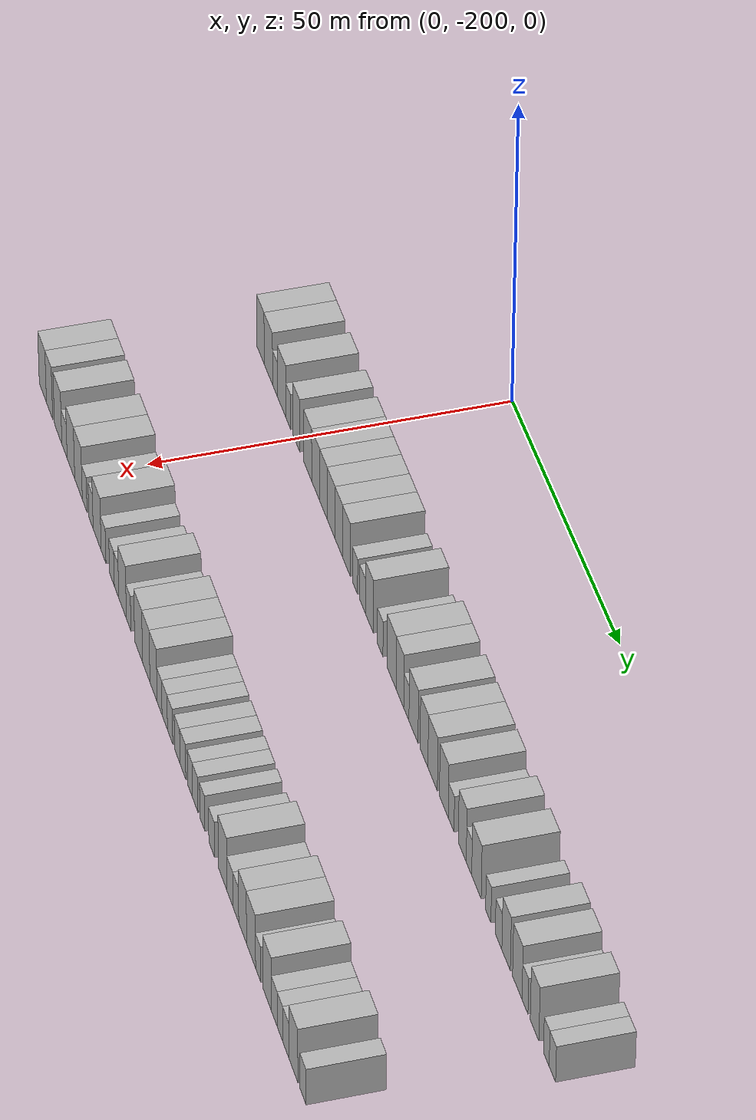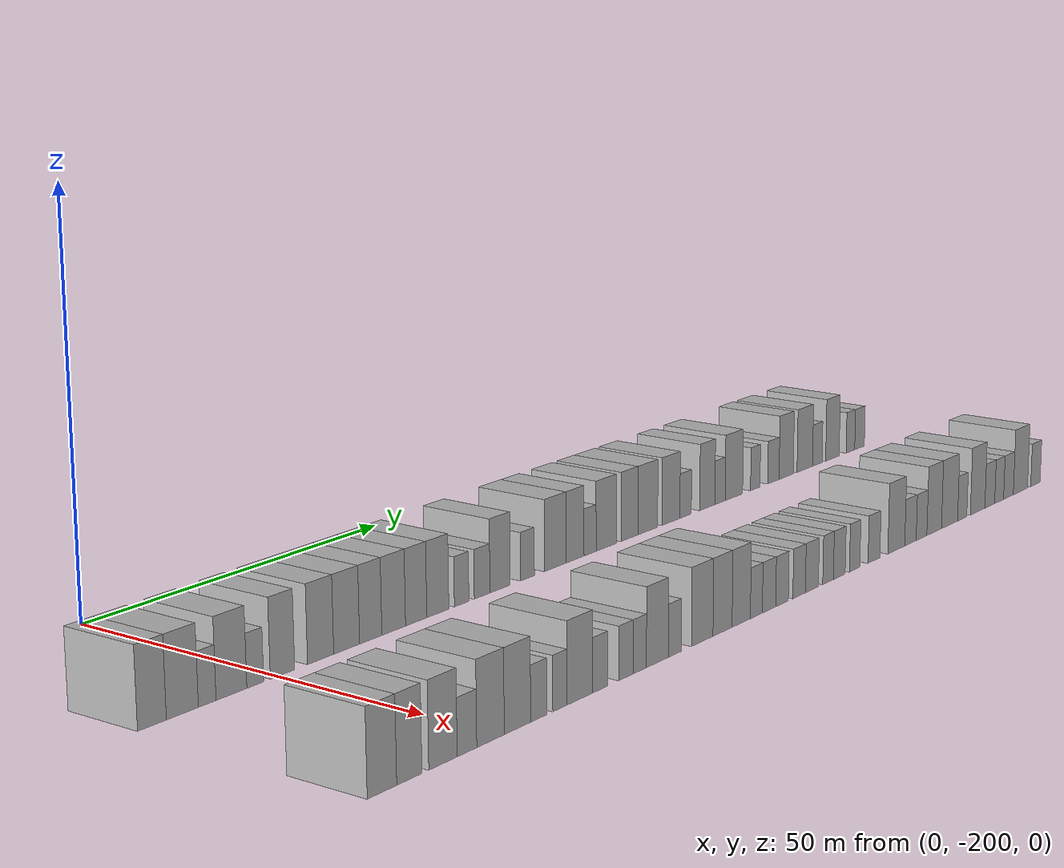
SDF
<sdf version="1.6">
 <world name="default">
  <model name="building_1">
   <static>1</static>
   <pose>25.0000 -218.0419 0 0.000000 0.000000 0.000000</pose>
   <link name="link">
    <pose>0 0 4.50 0 0 0</pose>
    <collision name="collision"><geometry><box><size>10.0000 3.9162 9.0000</size></box></geometry></collision>
    <visual name="visual">
     <cast_shadows>0</cast_shadows>
     <geometry><box><size>10.0000 3.9162 9.0000</size></box></geometry>
     <material>
      <script>
       <uri>model://HANNAS_wall/materials/scripts</uri>
       <uri>model://HANNAS_wall/materials/textures</uri>
       <name>vrc/HANNAS_wall</name>
      </script>
     </material>
    </visual>
   </link>
  </model>
  <model name="building_2">
   <static>1</static>
   <pose>25.0000 -213.8533 0 0.000000 0.000000 0.000000</pose>
   <link name="link">
    <pose>0 0 4.50 0 0 0</pose>
    <collision name="collision"><geometry><box><size>10.0000 4.4610 9.0000</size></box></geometry></collision>
    <visual name="visual">
     <cast_shadows>0</cast_shadows>
     <geometry><box><size>10.0000 4.4610 9.0000</size></box></geometry>
     <material>
      <script>
       <uri>model://HANNAS_wall/materials/scripts</uri>
       <uri>model://HANNAS_wall/materials/textures</uri>
       <name>vrc/HANNAS_wall</name>
      </script>
     </material>
    </visual>
   </link>
  </model>
  <model name="building_3">
   <static>1</static>
   <pose>25.0000 -210.3677 0 0.000000 0.000000 0.000000</pose>
   <link name="link">
    <pose>0 0 3.00 0 0 0</pose>
    <collision name="collision"><geometry><box><size>10.0000 2.5101 6.0000</size></box></geometry></collision>
    <visual name="visual">
     <cast_shadows>0</cast_shadows>
     <geometry><box><size>10.0000 2.5101 6.0000</size></box></geometry>
     <material>
      <script>
       <uri>model://HANNAS_wall/materials/scripts</uri>
       <uri>model://HANNAS_wall/materials/textures</uri>
       <name>vrc/HANNAS_wall</name>
      </script>
     </material>
    </visual>
   </link>
  </model>
  <model name="building_4">
   <static>1</static>
   <pose>25.0000 -206.8642 0 0.000000 0.000000 0.000000</pose>
   <link name="link">
    <pose>0 0 4.50 0 0 0</pose>
    <collision name="collision"><geometry><box><size>10.0000 4.4970 9.0000</size></box></geometry></collision>
    <visual name="visual">
     <cast_shadows>0</cast_shadows>
     <geometry><box><size>10.0000 4.4970 9.0000</size></box></geometry>
     <material>
      <script>
       <uri>model://HANNAS_wall/materials/scripts</uri>
       <uri>model://HANNAS_wall/materials/textures</uri>
       <name>vrc/HANNAS_wall</name>
      </script>
     </material>
    </visual>
   </link>
  </model>
  <model name="building_5">
   <static>1</static>
   <pose>25.0000 -203.3650 0 0.000000 0.000000 0.000000</pose>
   <link name="link">
    <pose>0 0 3.00 0 0 0</pose>
    <collision name="collision"><geometry><box><size>10.0000 2.5015 6.0000</size></box></geometry></collision>
    <visual name="visual">
     <cast_shadows>0</cast_shadows>
     <geometry><box><size>10.0000 2.5015 6.0000</size></box></geometry>
     <material>
      <script>
       <uri>model://HANNAS_wall/materials/scripts</uri>
       <uri>model://HANNAS_wall/materials/textures</uri>
       <name>vrc/HANNAS_wall</name>
      </script>
     </material>
    </visual>
   </link>
  </model>
  <model name="building_6">
   <static>1</static>
   <pose>25.0000 -199.2475 0 0.000000 0.000000 0.000000</pose>
   <link name="link">
    <pose>0 0 4.50 0 0 0</pose>
    <collision name="collision"><geometry><box><size>10.0000 3.7333 9.0000</size></box></geometry></collision>
    <visual name="visual">
     <cast_shadows>0</cast_shadows>
     <geometry><box><size>10.0000 3.7333 9.0000</size></box></geometry>
     <material>
      <script>
       <uri>model://HANNAS_wall/materials/scripts</uri>
       <uri>model://HANNAS_wall/materials/textures</uri>
       <name>vrc/HANNAS_wall</name>
      </script>
     </material>
    </visual>
   </link>
  </model>
  <model name="building_7">
   <static>1</static>
   <pose>25.0000 -193.3055 0 0.000000 0.000000 0.000000</pose>
   <link name="link">
    <pose>0 0 4.50 0 0 0</pose>
    <collision name="collision"><geometry><box><size>10.0000 4.1508 9.0000</size></box></geometry></collision>
    <visual name="visual">
     <cast_shadows>0</cast_shadows>
     <geometry><box><size>10.0000 4.1508 9.0000</size></box></geometry>
     <material>
      <script>
       <uri>model://HANNAS_wall/materials/scripts</uri>
       <uri>model://HANNAS_wall/materials/textures</uri>
       <name>vrc/HANNAS_wall</name>
      </script>
     </material>
    </visual>
   </link>
  </model>
  <model name="building_8">
   <static>1</static>
   <pose>25.0000 -189.1234 0 0.000000 0.000000 0.000000</pose>
   <link name="link">
    <pose>0 0 4.50 0 0 0</pose>
    <collision name="collision"><geometry><box><size>10.0000 4.2133 9.0000</size></box></geometry></collision>
    <visual name="visual">
     <cast_shadows>0</cast_shadows>
     <geometry><box><size>10.0000 4.2133 9.0000</size></box></geometry>
     <material>
      <script>
       <uri>model://HANNAS_wall/materials/scripts</uri>
       <uri>model://HANNAS_wall/materials/textures</uri>
       <name>vrc/HANNAS_wall</name>
      </script>
     </material>
    </visual>
   </link>
  </model>
  <model name="building_9">
   <static>1</static>
   <pose>25.0000 -185.1619 0 0.000000 0.000000 0.000000</pose>
   <link name="link">
    <pose>0 0 4.50 0 0 0</pose>
    <collision name="collision"><geometry><box><size>10.0000 3.7097 9.0000</size></box></geometry></collision>
    <visual name="visual">
     <cast_shadows>0</cast_shadows>
     <geometry><box><size>10.0000 3.7097 9.0000</size></box></geometry>
     <material>
      <script>
       <uri>model://HANNAS_wall/materials/scripts</uri>
       <uri>model://HANNAS_wall/materials/textures</uri>
       <name>vrc/HANNAS_wall</name>
      </script>
     </material>
    </visual>
   </link>
  </model>
  <model name="building_10">
   <static>1</static>
   <pose>25.0000 -181.2895 0 0.000000 0.000000 0.000000</pose>
   <link name="link">
    <pose>0 0 4.50 0 0 0</pose>
    <collision name="collision"><geometry><box><size>10.0000 4.0353 9.0000</size></box></geometry></collision>
    <visual name="visual">
     <cast_shadows>0</cast_shadows>
     <geometry><box><size>10.0000 4.0353 9.0000</size></box></geometry>
     <material>
      <script>
       <uri>model://HANNAS_wall/materials/scripts</uri>
       <uri>model://HANNAS_wall/materials/textures</uri>
       <name>vrc/HANNAS_wall</name>
      </script>
     </material>
    </visual>
   </link>
  </model>
  <model name="building_11">
   <static>1</static>
   <pose>25.0000 -177.4134 0 0.000000 0.000000 0.000000</pose>
   <link name="link">
    <pose>0 0 4.50 0 0 0</pose>
    <collision name="collision"><geometry><box><size>10.0000 3.7169 9.0000</size></box></geometry></collision>
    <visual name="visual">
     <cast_shadows>0</cast_shadows>
     <geometry><box><size>10.0000 3.7169 9.0000</size></box></geometry>
     <material>
      <script>
       <uri>model://HANNAS_wall/materials/scripts</uri>
       <uri>model://HANNAS_wall/materials/textures</uri>
       <name>vrc/HANNAS_wall</name>
      </script>
     </material>
    </visual>
   </link>
  </model>
  <model name="building_12">
   <static>1</static>
   <pose>25.0000 -173.5916 0 0.000000 0.000000 0.000000</pose>
   <link name="link">
    <pose>0 0 4.50 0 0 0</pose>
    <collision name="collision"><geometry><box><size>10.0000 3.9268 9.0000</size></box></geometry></collision>
    <visual name="visual">
     <cast_shadows>0</cast_shadows>
     <geometry><box><size>10.0000 3.9268 9.0000</size></box></geometry>
     <material>
      <script>
       <uri>model://HANNAS_wall/materials/scripts</uri>
       <uri>model://HANNAS_wall/materials/textures</uri>
       <name>vrc/HANNAS_wall</name>
      </script>
     </material>
    </visual>
   </link>
  </model>
  <model name="building_13">
   <static>1</static>
   <pose>25.0000 -169.3011 0 0.000000 0.000000 0.000000</pose>
   <link name="link">
    <pose>0 0 3.00 0 0 0</pose>
    <collision name="collision"><geometry><box><size>10.0000 2.6542 6.0000</size></box></geometry></collision>
    <visual name="visual">
     <cast_shadows>0</cast_shadows>
     <geometry><box><size>10.0000 2.6542 6.0000</size></box></geometry>
     <material>
      <script>
       <uri>model://HANNAS_wall/materials/scripts</uri>
       <uri>model://HANNAS_wall/materials/textures</uri>
       <name>vrc/HANNAS_wall</name>
      </script>
     </material>
    </visual>
   </link>
  </model>
  <model name="building_14">
   <static>1</static>
   <pose>25.0000 -165.5096 0 0.000000 0.000000 0.000000</pose>
   <link name="link">
    <pose>0 0 3.00 0 0 0</pose>
    <collision name="collision"><geometry><box><size>10.0000 2.9288 6.0000</size></box></geometry></collision>
    <visual name="visual">
     <cast_shadows>0</cast_shadows>
     <geometry><box><size>10.0000 2.9288 6.0000</size></box></geometry>
     <material>
      <script>
       <uri>model://HANNAS_wall/materials/scripts</uri>
       <uri>model://HANNAS_wall/materials/textures</uri>
       <name>vrc/HANNAS_wall</name>
      </script>
     </material>
    </visual>
   </link>
  </model>
  <model name="building_15">
   <static>1</static>
   <pose>25.0000 -162.1145 0 0.000000 0.000000 0.000000</pose>
   <link name="link">
    <pose>0 0 4.50 0 0 0</pose>
    <collision name="collision"><geometry><box><size>10.0000 3.8613 9.0000</size></box></geometry></collision>
    <visual name="visual">
     <cast_shadows>0</cast_shadows>
     <geometry><box><size>10.0000 3.8613 9.0000</size></box></geometry>
     <material>
      <script>
       <uri>model://HANNAS_wall/materials/scripts</uri>
       <uri>model://HANNAS_wall/materials/textures</uri>
       <name>vrc/HANNAS_wall</name>
      </script>
     </material>
    </visual>
   </link>
  </model>
  <model name="building_16">
   <static>1</static>
   <pose>25.0000 -156.8311 0 0.000000 0.000000 0.000000</pose>
   <link name="link">
    <pose>0 0 3.00 0 0 0</pose>
    <collision name="collision"><geometry><box><size>10.0000 2.7055 6.0000</size></box></geometry></collision>
    <visual name="visual">
     <cast_shadows>0</cast_shadows>
     <geometry><box><size>10.0000 2.7055 6.0000</size></box></geometry>
     <material>
      <script>
       <uri>model://HANNAS_wall/materials/scripts</uri>
       <uri>model://HANNAS_wall/materials/textures</uri>
       <name>vrc/HANNAS_wall</name>
      </script>
     </material>
    </visual>
   </link>
  </model>
  <model name="building_17">
   <static>1</static>
   <pose>25.0000 -151.2708 0 0.000000 0.000000 0.000000</pose>
   <link name="link">
    <pose>0 0 4.50 0 0 0</pose>
    <collision name="collision"><geometry><box><size>10.0000 4.4152 9.0000</size></box></geometry></collision>
    <visual name="visual">
     <cast_shadows>0</cast_shadows>
     <geometry><box><size>10.0000 4.4152 9.0000</size></box></geometry>
     <material>
      <script>
       <uri>model://HANNAS_wall/materials/scripts</uri>
       <uri>model://HANNAS_wall/materials/textures</uri>
       <name>vrc/HANNAS_wall</name>
      </script>
     </material>
    </visual>
   </link>
  </model>
  <model name="building_18">
   <static>1</static>
   <pose>25.0000 -147.2323 0 0.000000 0.000000 0.000000</pose>
   <link name="link">
    <pose>0 0 4.50 0 0 0</pose>
    <collision name="collision"><geometry><box><size>10.0000 3.6618 9.0000</size></box></geometry></collision>
    <visual name="visual">
     <cast_shadows>0</cast_shadows>
     <geometry><box><size>10.0000 3.6618 9.0000</size></box></geometry>
     <material>
      <script>
       <uri>model://HANNAS_wall/materials/scripts</uri>
       <uri>model://HANNAS_wall/materials/textures</uri>
       <name>vrc/HANNAS_wall</name>
      </script>
     </material>
    </visual>
   </link>
  </model>
  <model name="building_19">
   <static>1</static>
   <pose>25.0000 -144.1342 0 0.000000 0.000000 0.000000</pose>
   <link name="link">
    <pose>0 0 3.00 0 0 0</pose>
    <collision name="collision"><geometry><box><size>10.0000 2.5345 6.0000</size></box></geometry></collision>
    <visual name="visual">
     <cast_shadows>0</cast_shadows>
     <geometry><box><size>10.0000 2.5345 6.0000</size></box></geometry>
     <material>
      <script>
       <uri>model://HANNAS_wall/materials/scripts</uri>
       <uri>model://HANNAS_wall/materials/textures</uri>
       <name>vrc/HANNAS_wall</name>
      </script>
     </material>
    </visual>
   </link>
  </model>
  <model name="building_20">
   <static>1</static>
   <pose>25.0000 -140.6970 0 0.000000 0.000000 0.000000</pose>
   <link name="link">
    <pose>0 0 4.50 0 0 0</pose>
    <collision name="collision"><geometry><box><size>10.0000 4.3400 9.0000</size></box></geometry></collision>
    <visual name="visual">
     <cast_shadows>0</cast_shadows>
     <geometry><box><size>10.0000 4.3400 9.0000</size></box></geometry>
     <material>
      <script>
       <uri>model://HANNAS_wall/materials/scripts</uri>
       <uri>model://HANNAS_wall/materials/textures</uri>
       <name>vrc/HANNAS_wall</name>
      </script>
     </material>
    </visual>
   </link>
  </model>
  <model name="building_21">
   <static>1</static>
   <pose>25.0000 -135.6771 0 0.000000 0.000000 0.000000</pose>
   <link name="link">
    <pose>0 0 4.50 0 0 0</pose>
    <collision name="collision"><geometry><box><size>10.0000 3.6997 9.0000</size></box></geometry></collision>
    <visual name="visual">
     <cast_shadows>0</cast_shadows>
     <geometry><box><size>10.0000 3.6997 9.0000</size></box></geometry>
     <material>
      <script>
       <uri>model://HANNAS_wall/materials/scripts</uri>
       <uri>model://HANNAS_wall/materials/textures</uri>
       <name>vrc/HANNAS_wall</name>
      </script>
     </material>
    </visual>
   </link>
  </model>
  <model name="building_22">
   <static>1</static>
   <pose>25.0000 -131.6127 0 0.000000 0.000000 0.000000</pose>
   <link name="link">
    <pose>0 0 4.50 0 0 0</pose>
    <collision name="collision"><geometry><box><size>10.0000 4.4293 9.0000</size></box></geometry></collision>
    <visual name="visual">
     <cast_shadows>0</cast_shadows>
     <geometry><box><size>10.0000 4.4293 9.0000</size></box></geometry>
     <material>
      <script>
       <uri>model://HANNAS_wall/materials/scripts</uri>
       <uri>model://HANNAS_wall/materials/textures</uri>
       <name>vrc/HANNAS_wall</name>
      </script>
     </material>
    </visual>
   </link>
  </model>
  <model name="building_23">
   <static>1</static>
   <pose>25.0000 -126.3371 0 0.000000 0.000000 0.000000</pose>
   <link name="link">
    <pose>0 0 4.50 0 0 0</pose>
    <collision name="collision"><geometry><box><size>10.0000 4.1219 9.0000</size></box></geometry></collision>
    <visual name="visual">
     <cast_shadows>0</cast_shadows>
     <geometry><box><size>10.0000 4.1219 9.0000</size></box></geometry>
     <material>
      <script>
       <uri>model://HANNAS_wall/materials/scripts</uri>
       <uri>model://HANNAS_wall/materials/textures</uri>
       <name>vrc/HANNAS_wall</name>
      </script>
     </material>
    </visual>
   </link>
  </model>
  <model name="building_24">
   <static>1</static>
   <pose>25.0000 -122.9397 0 0.000000 0.000000 0.000000</pose>
   <link name="link">
    <pose>0 0 3.00 0 0 0</pose>
    <collision name="collision"><geometry><box><size>10.0000 2.6730 6.0000</size></box></geometry></collision>
    <visual name="visual">
     <cast_shadows>0</cast_shadows>
     <geometry><box><size>10.0000 2.6730 6.0000</size></box></geometry>
     <material>
      <script>
       <uri>model://HANNAS_wall/materials/scripts</uri>
       <uri>model://HANNAS_wall/materials/textures</uri>
       <name>vrc/HANNAS_wall</name>
      </script>
     </material>
    </visual>
   </link>
  </model>
  <model name="building_25">
   <static>1</static>
   <pose>25.0000 -117.7783 0 0.000000 0.000000 0.000000</pose>
   <link name="link">
    <pose>0 0 4.50 0 0 0</pose>
    <collision name="collision"><geometry><box><size>10.0000 3.6497 9.0000</size></box></geometry></collision>
    <visual name="visual">
     <cast_shadows>0</cast_shadows>
     <geometry><box><size>10.0000 3.6497 9.0000</size></box></geometry>
     <material>
      <script>
       <uri>model://HANNAS_wall/materials/scripts</uri>
       <uri>model://HANNAS_wall/materials/textures</uri>
       <name>vrc/HANNAS_wall</name>
      </script>
     </material>
    </visual>
   </link>
  </model>
  <model name="building_26">
   <static>1</static>
   <pose>25.0000 -114.7021 0 0.000000 0.000000 0.000000</pose>
   <link name="link">
    <pose>0 0 3.00 0 0 0</pose>
    <collision name="collision"><geometry><box><size>10.0000 2.5026 6.0000</size></box></geometry></collision>
    <visual name="visual">
     <cast_shadows>0</cast_shadows>
     <geometry><box><size>10.0000 2.5026 6.0000</size></box></geometry>
     <material>
      <script>
       <uri>model://HANNAS_wall/materials/scripts</uri>
       <uri>model://HANNAS_wall/materials/textures</uri>
       <name>vrc/HANNAS_wall</name>
      </script>
     </material>
    </visual>
   </link>
  </model>
  <model name="building_27">
   <static>1</static>
   <pose>25.0000 -111.2873 0 0.000000 0.000000 0.000000</pose>
   <link name="link">
    <pose>0 0 4.50 0 0 0</pose>
    <collision name="collision"><geometry><box><size>10.0000 4.3269 9.0000</size></box></geometry></collision>
    <visual name="visual">
     <cast_shadows>0</cast_shadows>
     <geometry><box><size>10.0000 4.3269 9.0000</size></box></geometry>
     <material>
      <script>
       <uri>model://HANNAS_wall/materials/scripts</uri>
       <uri>model://HANNAS_wall/materials/textures</uri>
       <name>vrc/HANNAS_wall</name>
      </script>
     </material>
    </visual>
   </link>
  </model>
  <model name="building_28">
   <static>1</static>
   <pose>25.0000 -105.9201 0 0.000000 0.000000 0.000000</pose>
   <link name="link">
    <pose>0 0 3.00 0 0 0</pose>
    <collision name="collision"><geometry><box><size>10.0000 2.4074 6.0000</size></box></geometry></collision>
    <visual name="visual">
     <cast_shadows>0</cast_shadows>
     <geometry><box><size>10.0000 2.4074 6.0000</size></box></geometry>
     <material>
      <script>
       <uri>model://HANNAS_wall/materials/scripts</uri>
       <uri>model://HANNAS_wall/materials/textures</uri>
       <name>vrc/HANNAS_wall</name>
      </script>
     </material>
    </visual>
   </link>
  </model>
  <model name="building_29">
   <static>1</static>
   <pose>25.0000 -101.2425 0 0.000000 0.000000 0.000000</pose>
   <link name="link">
    <pose>0 0 3.00 0 0 0</pose>
    <collision name="collision"><geometry><box><size>10.0000 2.9478 6.0000</size></box></geometry></collision>
    <visual name="visual">
     <cast_shadows>0</cast_shadows>
     <geometry><box><size>10.0000 2.9478 6.0000</size></box></geometry>
     <material>
      <script>
       <uri>model://HANNAS_wall/materials/scripts</uri>
       <uri>model://HANNAS_wall/materials/textures</uri>
       <name>vrc/HANNAS_wall</name>
      </script>
     </material>
    </visual>
   </link>
  </model>
  <model name="building_30">
   <static>1</static>
   <pose>25.0000 -97.8844 0 0.000000 0.000000 0.000000</pose>
   <link name="link">
    <pose>0 0 4.50 0 0 0</pose>
    <collision name="collision"><geometry><box><size>10.0000 3.7685 9.0000</size></box></geometry></collision>
    <visual name="visual">
     <cast_shadows>0</cast_shadows>
     <geometry><box><size>10.0000 3.7685 9.0000</size></box></geometry>
     <material>
      <script>
       <uri>model://HANNAS_wall/materials/scripts</uri>
       <uri>model://HANNAS_wall/materials/textures</uri>
       <name>vrc/HANNAS_wall</name>
      </script>
     </material>
    </visual>
   </link>
  </model>
  <model name="building_31">
   <static>1</static>
   <pose>25.0000 -92.9036 0 0.000000 0.000000 0.000000</pose>
   <link name="link">
    <pose>0 0 4.50 0 0 0</pose>
    <collision name="collision"><geometry><box><size>10.0000 4.1931 9.0000</size></box></geometry></collision>
    <visual name="visual">
     <cast_shadows>0</cast_shadows>
     <geometry><box><size>10.0000 4.1931 9.0000</size></box></geometry>
     <material>
      <script>
       <uri>model://HANNAS_wall/materials/scripts</uri>
       <uri>model://HANNAS_wall/materials/textures</uri>
       <name>vrc/HANNAS_wall</name>
      </script>
     </material>
    </visual>
   </link>
  </model>
  <model name="building_32">
   <static>1</static>
   <pose>25.0000 -89.4860 0 0.000000 0.000000 0.000000</pose>
   <link name="link">
    <pose>0 0 3.00 0 0 0</pose>
    <collision name="collision"><geometry><box><size>10.0000 2.6422 6.0000</size></box></geometry></collision>
    <visual name="visual">
     <cast_shadows>0</cast_shadows>
     <geometry><box><size>10.0000 2.6422 6.0000</size></box></geometry>
     <material>
      <script>
       <uri>model://HANNAS_wall/materials/scripts</uri>
       <uri>model://HANNAS_wall/materials/textures</uri>
       <name>vrc/HANNAS_wall</name>
      </script>
     </material>
    </visual>
   </link>
  </model>
  <model name="building_33">
   <static>1</static>
   <pose>25.0000 -85.2763 0 0.000000 0.000000 0.000000</pose>
   <link name="link">
    <pose>0 0 4.50 0 0 0</pose>
    <collision name="collision"><geometry><box><size>10.0000 3.7771 9.0000</size></box></geometry></collision>
    <visual name="visual">
     <cast_shadows>0</cast_shadows>
     <geometry><box><size>10.0000 3.7771 9.0000</size></box></geometry>
     <material>
      <script>
       <uri>model://HANNAS_wall/materials/scripts</uri>
       <uri>model://HANNAS_wall/materials/textures</uri>
       <name>vrc/HANNAS_wall</name>
      </script>
     </material>
    </visual>
   </link>
  </model>
  <model name="building_34">
   <static>1</static>
   <pose>25.0000 -80.1502 0 0.000000 0.000000 0.000000</pose>
   <link name="link">
    <pose>0 0 3.00 0 0 0</pose>
    <collision name="collision"><geometry><box><size>10.0000 2.4752 6.0000</size></box></geometry></collision>
    <visual name="visual">
     <cast_shadows>0</cast_shadows>
     <geometry><box><size>10.0000 2.4752 6.0000</size></box></geometry>
     <material>
      <script>
       <uri>model://HANNAS_wall/materials/scripts</uri>
       <uri>model://HANNAS_wall/materials/textures</uri>
       <name>vrc/HANNAS_wall</name>
      </script>
     </material>
    </visual>
   </link>
  </model>
  <model name="building_35">
   <static>1</static>
   <pose>25.0000 -77.5133 0 0.000000 0.000000 0.000000</pose>
   <link name="link">
    <pose>0 0 3.00 0 0 0</pose>
    <collision name="collision"><geometry><box><size>10.0000 2.7986 6.0000</size></box></geometry></collision>
    <visual name="visual">
     <cast_shadows>0</cast_shadows>
     <geometry><box><size>10.0000 2.7986 6.0000</size></box></geometry>
     <material>
      <script>
       <uri>model://HANNAS_wall/materials/scripts</uri>
       <uri>model://HANNAS_wall/materials/textures</uri>
       <name>vrc/HANNAS_wall</name>
      </script>
     </material>
    </visual>
   </link>
  </model>
  <model name="building_108">
   <static>1</static>
   <pose>55.0000 -217.9267 0 0.000000 0.000000 0.000000</pose>
   <link name="link">
    <pose>0 0 4.50 0 0 0</pose>
    <collision name="collision"><geometry><box><size>10.0000 4.1465 9.0000</size></box></geometry></collision>
    <visual name="visual">
     <cast_shadows>0</cast_shadows>
     <geometry><box><size>10.0000 4.1465 9.0000</size></box></geometry>
     <material>
      <script>
       <uri>model://HANNAS_wall/materials/scripts</uri>
       <uri>model://HANNAS_wall/materials/textures</uri>
       <name>vrc/HANNAS_wall</name>
      </script>
     </material>
    </visual>
   </link>
  </model>
  <model name="building_109">
   <static>1</static>
   <pose>55.0000 -214.0347 0 0.000000 0.000000 0.000000</pose>
   <link name="link">
    <pose>0 0 4.50 0 0 0</pose>
    <collision name="collision"><geometry><box><size>10.0000 3.6376 9.0000</size></box></geometry></collision>
    <visual name="visual">
     <cast_shadows>0</cast_shadows>
     <geometry><box><size>10.0000 3.6376 9.0000</size></box></geometry>
     <material>
      <script>
       <uri>model://HANNAS_wall/materials/scripts</uri>
       <uri>model://HANNAS_wall/materials/textures</uri>
       <name>vrc/HANNAS_wall</name>
      </script>
     </material>
    </visual>
   </link>
  </model>
  <model name="building_110">
   <static>1</static>
   <pose>55.0000 -209.0882 0 0.000000 0.000000 0.000000</pose>
   <link name="link">
    <pose>0 0 4.50 0 0 0</pose>
    <collision name="collision"><geometry><box><size>10.0000 4.2554 9.0000</size></box></geometry></collision>
    <visual name="visual">
     <cast_shadows>0</cast_shadows>
     <geometry><box><size>10.0000 4.2554 9.0000</size></box></geometry>
     <material>
      <script>
       <uri>model://HANNAS_wall/materials/scripts</uri>
       <uri>model://HANNAS_wall/materials/textures</uri>
       <name>vrc/HANNAS_wall</name>
      </script>
     </material>
    </visual>
   </link>
  </model>
  <model name="building_111">
   <static>1</static>
   <pose>55.0000 -205.4622 0 0.000000 0.000000 0.000000</pose>
   <link name="link">
    <pose>0 0 3.00 0 0 0</pose>
    <collision name="collision"><geometry><box><size>10.0000 2.9965 6.0000</size></box></geometry></collision>
    <visual name="visual">
     <cast_shadows>0</cast_shadows>
     <geometry><box><size>10.0000 2.9965 6.0000</size></box></geometry>
     <material>
      <script>
       <uri>model://HANNAS_wall/materials/scripts</uri>
       <uri>model://HANNAS_wall/materials/textures</uri>
       <name>vrc/HANNAS_wall</name>
      </script>
     </material>
    </visual>
   </link>
  </model>
  <model name="building_112">
   <static>1</static>
   <pose>55.0000 -201.8013 0 0.000000 0.000000 0.000000</pose>
   <link name="link">
    <pose>0 0 4.50 0 0 0</pose>
    <collision name="collision"><geometry><box><size>10.0000 4.3253 9.0000</size></box></geometry></collision>
    <visual name="visual">
     <cast_shadows>0</cast_shadows>
     <geometry><box><size>10.0000 4.3253 9.0000</size></box></geometry>
     <material>
      <script>
       <uri>model://HANNAS_wall/materials/scripts</uri>
       <uri>model://HANNAS_wall/materials/textures</uri>
       <name>vrc/HANNAS_wall</name>
      </script>
     </material>
    </visual>
   </link>
  </model>
  <model name="building_113">
   <static>1</static>
   <pose>55.0000 -197.5059 0 0.000000 0.000000 0.000000</pose>
   <link name="link">
    <pose>0 0 4.50 0 0 0</pose>
    <collision name="collision"><geometry><box><size>10.0000 4.2656 9.0000</size></box></geometry></collision>
    <visual name="visual">
     <cast_shadows>0</cast_shadows>
     <geometry><box><size>10.0000 4.2656 9.0000</size></box></geometry>
     <material>
      <script>
       <uri>model://HANNAS_wall/materials/scripts</uri>
       <uri>model://HANNAS_wall/materials/textures</uri>
       <name>vrc/HANNAS_wall</name>
      </script>
     </material>
    </visual>
   </link>
  </model>
  <model name="building_114">
   <static>1</static>
   <pose>55.0000 -194.0413 0 0.000000 0.000000 0.000000</pose>
   <link name="link">
    <pose>0 0 3.00 0 0 0</pose>
    <collision name="collision"><geometry><box><size>10.0000 2.6636 6.0000</size></box></geometry></collision>
    <visual name="visual">
     <cast_shadows>0</cast_shadows>
     <geometry><box><size>10.0000 2.6636 6.0000</size></box></geometry>
     <material>
      <script>
       <uri>model://HANNAS_wall/materials/scripts</uri>
       <uri>model://HANNAS_wall/materials/textures</uri>
       <name>vrc/HANNAS_wall</name>
      </script>
     </material>
    </visual>
   </link>
  </model>
  <model name="building_115">
   <static>1</static>
   <pose>55.0000 -190.5058 0 0.000000 0.000000 0.000000</pose>
   <link name="link">
    <pose>0 0 3.00 0 0 0</pose>
    <collision name="collision"><geometry><box><size>10.0000 2.4074 6.0000</size></box></geometry></collision>
    <visual name="visual">
     <cast_shadows>0</cast_shadows>
     <geometry><box><size>10.0000 2.4074 6.0000</size></box></geometry>
     <material>
      <script>
       <uri>model://HANNAS_wall/materials/scripts</uri>
       <uri>model://HANNAS_wall/materials/textures</uri>
       <name>vrc/HANNAS_wall</name>
      </script>
     </material>
    </visual>
   </link>
  </model>
  <model name="building_116">
   <static>1</static>
   <pose>55.0000 -187.0731 0 0.000000 0.000000 0.000000</pose>
   <link name="link">
    <pose>0 0 4.50 0 0 0</pose>
    <collision name="collision"><geometry><box><size>10.0000 4.4581 9.0000</size></box></geometry></collision>
    <visual name="visual">
     <cast_shadows>0</cast_shadows>
     <geometry><box><size>10.0000 4.4581 9.0000</size></box></geometry>
     <material>
      <script>
       <uri>model://HANNAS_wall/materials/scripts</uri>
       <uri>model://HANNAS_wall/materials/textures</uri>
       <name>vrc/HANNAS_wall</name>
      </script>
     </material>
    </visual>
   </link>
  </model>
  <model name="building_117">
   <static>1</static>
   <pose>55.0000 -183.5294 0 0.000000 0.000000 0.000000</pose>
   <link name="link">
    <pose>0 0 3.00 0 0 0</pose>
    <collision name="collision"><geometry><box><size>10.0000 2.6293 6.0000</size></box></geometry></collision>
    <visual name="visual">
     <cast_shadows>0</cast_shadows>
     <geometry><box><size>10.0000 2.6293 6.0000</size></box></geometry>
     <material>
      <script>
       <uri>model://HANNAS_wall/materials/scripts</uri>
       <uri>model://HANNAS_wall/materials/textures</uri>
       <name>vrc/HANNAS_wall</name>
      </script>
     </material>
    </visual>
   </link>
  </model>
  <model name="building_118">
   <static>1</static>
   <pose>55.0000 -178.9014 0 0.000000 0.000000 0.000000</pose>
   <link name="link">
    <pose>0 0 3.00 0 0 0</pose>
    <collision name="collision"><geometry><box><size>10.0000 2.6267 6.0000</size></box></geometry></collision>
    <visual name="visual">
     <cast_shadows>0</cast_shadows>
     <geometry><box><size>10.0000 2.6267 6.0000</size></box></geometry>
     <material>
      <script>
       <uri>model://HANNAS_wall/materials/scripts</uri>
       <uri>model://HANNAS_wall/materials/textures</uri>
       <name>vrc/HANNAS_wall</name>
      </script>
     </material>
    </visual>
   </link>
  </model>
  <model name="building_119">
   <static>1</static>
   <pose>55.0000 -176.3672 0 0.000000 0.000000 0.000000</pose>
   <link name="link">
    <pose>0 0 3.00 0 0 0</pose>
    <collision name="collision"><geometry><box><size>10.0000 2.4415 6.0000</size></box></geometry></collision>
    <visual name="visual">
     <cast_shadows>0</cast_shadows>
     <geometry><box><size>10.0000 2.4415 6.0000</size></box></geometry>
     <material>
      <script>
       <uri>model://HANNAS_wall/materials/scripts</uri>
       <uri>model://HANNAS_wall/materials/textures</uri>
       <name>vrc/HANNAS_wall</name>
      </script>
     </material>
    </visual>
   </link>
  </model>
  <model name="building_120">
   <static>1</static>
   <pose>55.0000 -173.0752 0 0.000000 0.000000 0.000000</pose>
   <link name="link">
    <pose>0 0 4.50 0 0 0</pose>
    <collision name="collision"><geometry><box><size>10.0000 4.1426 9.0000</size></box></geometry></collision>
    <visual name="visual">
     <cast_shadows>0</cast_shadows>
     <geometry><box><size>10.0000 4.1426 9.0000</size></box></geometry>
     <material>
      <script>
       <uri>model://HANNAS_wall/materials/scripts</uri>
       <uri>model://HANNAS_wall/materials/textures</uri>
       <name>vrc/HANNAS_wall</name>
      </script>
     </material>
    </visual>
   </link>
  </model>
  <model name="building_121">
   <static>1</static>
   <pose>55.0000 -169.7583 0 0.000000 0.000000 0.000000</pose>
   <link name="link">
    <pose>0 0 3.00 0 0 0</pose>
    <collision name="collision"><geometry><box><size>10.0000 2.4912 6.0000</size></box></geometry></collision>
    <visual name="visual">
     <cast_shadows>0</cast_shadows>
     <geometry><box><size>10.0000 2.4912 6.0000</size></box></geometry>
     <material>
      <script>
       <uri>model://HANNAS_wall/materials/scripts</uri>
       <uri>model://HANNAS_wall/materials/textures</uri>
       <name>vrc/HANNAS_wall</name>
      </script>
     </material>
    </visual>
   </link>
  </model>
  <model name="building_122">
   <static>1</static>
   <pose>55.0000 -164.3716 0 0.000000 0.000000 0.000000</pose>
   <link name="link">
    <pose>0 0 4.50 0 0 0</pose>
    <collision name="collision"><geometry><box><size>10.0000 4.2822 9.0000</size></box></geometry></collision>
    <visual name="visual">
     <cast_shadows>0</cast_shadows>
     <geometry><box><size>10.0000 4.2822 9.0000</size></box></geometry>
     <material>
      <script>
       <uri>model://HANNAS_wall/materials/scripts</uri>
       <uri>model://HANNAS_wall/materials/textures</uri>
       <name>vrc/HANNAS_wall</name>
      </script>
     </material>
    </visual>
   </link>
  </model>
  <model name="building_123">
   <static>1</static>
   <pose>55.0000 -160.2860 0 0.000000 0.000000 0.000000</pose>
   <link name="link">
    <pose>0 0 4.50 0 0 0</pose>
    <collision name="collision"><geometry><box><size>10.0000 3.8890 9.0000</size></box></geometry></collision>
    <visual name="visual">
     <cast_shadows>0</cast_shadows>
     <geometry><box><size>10.0000 3.8890 9.0000</size></box></geometry>
     <material>
      <script>
       <uri>model://HANNAS_wall/materials/scripts</uri>
       <uri>model://HANNAS_wall/materials/textures</uri>
       <name>vrc/HANNAS_wall</name>
      </script>
     </material>
    </visual>
   </link>
  </model>
  <model name="building_124">
   <static>1</static>
   <pose>55.0000 -156.4290 0 0.000000 0.000000 0.000000</pose>
   <link name="link">
    <pose>0 0 4.50 0 0 0</pose>
    <collision name="collision"><geometry><box><size>10.0000 3.8249 9.0000</size></box></geometry></collision>
    <visual name="visual">
     <cast_shadows>0</cast_shadows>
     <geometry><box><size>10.0000 3.8249 9.0000</size></box></geometry>
     <material>
      <script>
       <uri>model://HANNAS_wall/materials/scripts</uri>
       <uri>model://HANNAS_wall/materials/textures</uri>
       <name>vrc/HANNAS_wall</name>
      </script>
     </material>
    </visual>
   </link>
  </model>
  <model name="building_125">
   <static>1</static>
   <pose>55.0000 -153.2456 0 0.000000 0.000000 0.000000</pose>
   <link name="link">
    <pose>0 0 3.00 0 0 0</pose>
    <collision name="collision"><geometry><box><size>10.0000 2.5420 6.0000</size></box></geometry></collision>
    <visual name="visual">
     <cast_shadows>0</cast_shadows>
     <geometry><box><size>10.0000 2.5420 6.0000</size></box></geometry>
     <material>
      <script>
       <uri>model://HANNAS_wall/materials/scripts</uri>
       <uri>model://HANNAS_wall/materials/textures</uri>
       <name>vrc/HANNAS_wall</name>
      </script>
     </material>
    </visual>
   </link>
  </model>
  <model name="building_126">
   <static>1</static>
   <pose>55.0000 -150.5307 0 0.000000 0.000000 0.000000</pose>
   <link name="link">
    <pose>0 0 3.00 0 0 0</pose>
    <collision name="collision"><geometry><box><size>10.0000 2.8878 6.0000</size></box></geometry></collision>
    <visual name="visual">
     <cast_shadows>0</cast_shadows>
     <geometry><box><size>10.0000 2.8878 6.0000</size></box></geometry>
     <material>
      <script>
       <uri>model://HANNAS_wall/materials/scripts</uri>
       <uri>model://HANNAS_wall/materials/textures</uri>
       <name>vrc/HANNAS_wall</name>
      </script>
     </material>
    </visual>
   </link>
  </model>
  <model name="building_127">
   <static>1</static>
   <pose>55.0000 -147.6992 0 0.000000 0.000000 0.000000</pose>
   <link name="link">
    <pose>0 0 3.00 0 0 0</pose>
    <collision name="collision"><geometry><box><size>10.0000 2.7753 6.0000</size></box></geometry></collision>
    <visual name="visual">
     <cast_shadows>0</cast_shadows>
     <geometry><box><size>10.0000 2.7753 6.0000</size></box></geometry>
     <material>
      <script>
       <uri>model://HANNAS_wall/materials/scripts</uri>
       <uri>model://HANNAS_wall/materials/textures</uri>
       <name>vrc/HANNAS_wall</name>
      </script>
     </material>
    </visual>
   </link>
  </model>
  <model name="building_128">
   <static>1</static>
   <pose>55.0000 -143.9093 0 0.000000 0.000000 0.000000</pose>
   <link name="link">
    <pose>0 0 3.00 0 0 0</pose>
    <collision name="collision"><geometry><box><size>10.0000 2.8045 6.0000</size></box></geometry></collision>
    <visual name="visual">
     <cast_shadows>0</cast_shadows>
     <geometry><box><size>10.0000 2.8045 6.0000</size></box></geometry>
     <material>
      <script>
       <uri>model://HANNAS_wall/materials/scripts</uri>
       <uri>model://HANNAS_wall/materials/textures</uri>
       <name>vrc/HANNAS_wall</name>
      </script>
     </material>
    </visual>
   </link>
  </model>
  <model name="building_129">
   <static>1</static>
   <pose>55.0000 -141.0222 0 0.000000 0.000000 0.000000</pose>
   <link name="link">
    <pose>0 0 3.00 0 0 0</pose>
    <collision name="collision"><geometry><box><size>10.0000 2.9698 6.0000</size></box></geometry></collision>
    <visual name="visual">
     <cast_shadows>0</cast_shadows>
     <geometry><box><size>10.0000 2.9698 6.0000</size></box></geometry>
     <material>
      <script>
       <uri>model://HANNAS_wall/materials/scripts</uri>
       <uri>model://HANNAS_wall/materials/textures</uri>
       <name>vrc/HANNAS_wall</name>
      </script>
     </material>
    </visual>
   </link>
  </model>
  <model name="building_130">
   <static>1</static>
   <pose>55.0000 -137.2950 0 0.000000 0.000000 0.000000</pose>
   <link name="link">
    <pose>0 0 3.00 0 0 0</pose>
    <collision name="collision"><geometry><box><size>10.0000 2.4845 6.0000</size></box></geometry></collision>
    <visual name="visual">
     <cast_shadows>0</cast_shadows>
     <geometry><box><size>10.0000 2.4845 6.0000</size></box></geometry>
     <material>
      <script>
       <uri>model://HANNAS_wall/materials/scripts</uri>
       <uri>model://HANNAS_wall/materials/textures</uri>
       <name>vrc/HANNAS_wall</name>
      </script>
     </material>
    </visual>
   </link>
  </model>
  <model name="building_131">
   <static>1</static>
   <pose>55.0000 -134.6602 0 0.000000 0.000000 0.000000</pose>
   <link name="link">
    <pose>0 0 3.00 0 0 0</pose>
    <collision name="collision"><geometry><box><size>10.0000 2.7852 6.0000</size></box></geometry></collision>
    <visual name="visual">
     <cast_shadows>0</cast_shadows>
     <geometry><box><size>10.0000 2.7852 6.0000</size></box></geometry>
     <material>
      <script>
       <uri>model://HANNAS_wall/materials/scripts</uri>
       <uri>model://HANNAS_wall/materials/textures</uri>
       <name>vrc/HANNAS_wall</name>
      </script>
     </material>
    </visual>
   </link>
  </model>
  <model name="building_132">
   <static>1</static>
   <pose>55.0000 -131.0063 0 0.000000 0.000000 0.000000</pose>
   <link name="link">
    <pose>0 0 3.00 0 0 0</pose>
    <collision name="collision"><geometry><box><size>10.0000 2.5226 6.0000</size></box></geometry></collision>
    <visual name="visual">
     <cast_shadows>0</cast_shadows>
     <geometry><box><size>10.0000 2.5226 6.0000</size></box></geometry>
     <material>
      <script>
       <uri>model://HANNAS_wall/materials/scripts</uri>
       <uri>model://HANNAS_wall/materials/textures</uri>
       <name>vrc/HANNAS_wall</name>
      </script>
     </material>
    </visual>
   </link>
  </model>
  <model name="building_133">
   <static>1</static>
   <pose>55.0000 -126.2814 0 0.000000 0.000000 0.000000</pose>
   <link name="link">
    <pose>0 0 3.00 0 0 0</pose>
    <collision name="collision"><geometry><box><size>10.0000 2.9272 6.0000</size></box></geometry></collision>
    <visual name="visual">
     <cast_shadows>0</cast_shadows>
     <geometry><box><size>10.0000 2.9272 6.0000</size></box></geometry>
     <material>
      <script>
       <uri>model://HANNAS_wall/materials/scripts</uri>
       <uri>model://HANNAS_wall/materials/textures</uri>
       <name>vrc/HANNAS_wall</name>
      </script>
     </material>
    </visual>
   </link>
  </model>
  <model name="building_134">
   <static>1</static>
   <pose>55.0000 -120.6700 0 0.000000 0.000000 0.000000</pose>
   <link name="link">
    <pose>0 0 4.50 0 0 0</pose>
    <collision name="collision"><geometry><box><size>10.0000 4.2956 9.0000</size></box></geometry></collision>
    <visual name="visual">
     <cast_shadows>0</cast_shadows>
     <geometry><box><size>10.0000 4.2956 9.0000</size></box></geometry>
     <material>
      <script>
       <uri>model://HANNAS_wall/materials/scripts</uri>
       <uri>model://HANNAS_wall/materials/textures</uri>
       <name>vrc/HANNAS_wall</name>
      </script>
     </material>
    </visual>
   </link>
  </model>
  <model name="building_135">
   <static>1</static>
   <pose>55.0000 -117.0394 0 0.000000 0.000000 0.000000</pose>
   <link name="link">
    <pose>0 0 3.00 0 0 0</pose>
    <collision name="collision"><geometry><box><size>10.0000 2.9655 6.0000</size></box></geometry></collision>
    <visual name="visual">
     <cast_shadows>0</cast_shadows>
     <geometry><box><size>10.0000 2.9655 6.0000</size></box></geometry>
     <material>
      <script>
       <uri>model://HANNAS_wall/materials/scripts</uri>
       <uri>model://HANNAS_wall/materials/textures</uri>
       <name>vrc/HANNAS_wall</name>
      </script>
     </material>
    </visual>
   </link>
  </model>
  <model name="building_136">
   <static>1</static>
   <pose>55.0000 -114.1425 0 0.000000 0.000000 0.000000</pose>
   <link name="link">
    <pose>0 0 3.00 0 0 0</pose>
    <collision name="collision"><geometry><box><size>10.0000 2.8282 6.0000</size></box></geometry></collision>
    <visual name="visual">
     <cast_shadows>0</cast_shadows>
     <geometry><box><size>10.0000 2.8282 6.0000</size></box></geometry>
     <material>
      <script>
       <uri>model://HANNAS_wall/materials/scripts</uri>
       <uri>model://HANNAS_wall/materials/textures</uri>
       <name>vrc/HANNAS_wall</name>
      </script>
     </material>
    </visual>
   </link>
  </model>
  <model name="building_137">
   <static>1</static>
   <pose>55.0000 -110.7688 0 0.000000 0.000000 0.000000</pose>
   <link name="link">
    <pose>0 0 4.50 0 0 0</pose>
    <collision name="collision"><geometry><box><size>10.0000 3.9192 9.0000</size></box></geometry></collision>
    <visual name="visual">
     <cast_shadows>0</cast_shadows>
     <geometry><box><size>10.0000 3.9192 9.0000</size></box></geometry>
     <material>
      <script>
       <uri>model://HANNAS_wall/materials/scripts</uri>
       <uri>model://HANNAS_wall/materials/textures</uri>
       <name>vrc/HANNAS_wall</name>
      </script>
     </material>
    </visual>
   </link>
  </model>
  <model name="building_138">
   <static>1</static>
   <pose>55.0000 -106.6049 0 0.000000 0.000000 0.000000</pose>
   <link name="link">
    <pose>0 0 4.50 0 0 0</pose>
    <collision name="collision"><geometry><box><size>10.0000 4.4086 9.0000</size></box></geometry></collision>
    <visual name="visual">
     <cast_shadows>0</cast_shadows>
     <geometry><box><size>10.0000 4.4086 9.0000</size></box></geometry>
     <material>
      <script>
       <uri>model://HANNAS_wall/materials/scripts</uri>
       <uri>model://HANNAS_wall/materials/textures</uri>
       <name>vrc/HANNAS_wall</name>
      </script>
     </material>
    </visual>
   </link>
  </model>
  <model name="building_139">
   <static>1</static>
   <pose>55.0000 -103.1118 0 0.000000 0.000000 0.000000</pose>
   <link name="link">
    <pose>0 0 3.00 0 0 0</pose>
    <collision name="collision"><geometry><box><size>10.0000 2.5775 6.0000</size></box></geometry></collision>
    <visual name="visual">
     <cast_shadows>0</cast_shadows>
     <geometry><box><size>10.0000 2.5775 6.0000</size></box></geometry>
     <material>
      <script>
       <uri>model://HANNAS_wall/materials/scripts</uri>
       <uri>model://HANNAS_wall/materials/textures</uri>
       <name>vrc/HANNAS_wall</name>
      </script>
     </material>
    </visual>
   </link>
  </model>
  <model name="building_140">
   <static>1</static>
   <pose>55.0000 -98.7578 0 0.000000 0.000000 0.000000</pose>
   <link name="link">
    <pose>0 0 4.50 0 0 0</pose>
    <collision name="collision"><geometry><box><size>10.0000 4.1305 9.0000</size></box></geometry></collision>
    <visual name="visual">
     <cast_shadows>0</cast_shadows>
     <geometry><box><size>10.0000 4.1305 9.0000</size></box></geometry>
     <material>
      <script>
       <uri>model://HANNAS_wall/materials/scripts</uri>
       <uri>model://HANNAS_wall/materials/textures</uri>
       <name>vrc/HANNAS_wall</name>
      </script>
     </material>
    </visual>
   </link>
  </model>
  <model name="building_141">
   <static>1</static>
   <pose>55.0000 -95.2647 0 0.000000 0.000000 0.000000</pose>
   <link name="link">
    <pose>0 0 3.00 0 0 0</pose>
    <collision name="collision"><geometry><box><size>10.0000 2.8557 6.0000</size></box></geometry></collision>
    <visual name="visual">
     <cast_shadows>0</cast_shadows>
     <geometry><box><size>10.0000 2.8557 6.0000</size></box></geometry>
     <material>
      <script>
       <uri>model://HANNAS_wall/materials/scripts</uri>
       <uri>model://HANNAS_wall/materials/textures</uri>
       <name>vrc/HANNAS_wall</name>
      </script>
     </material>
    </visual>
   </link>
  </model>
  <model name="building_142">
   <static>1</static>
   <pose>55.0000 -92.5234 0 0.000000 0.000000 0.000000</pose>
   <link name="link">
    <pose>0 0 3.00 0 0 0</pose>
    <collision name="collision"><geometry><box><size>10.0000 2.6271 6.0000</size></box></geometry></collision>
    <visual name="visual">
     <cast_shadows>0</cast_shadows>
     <geometry><box><size>10.0000 2.6271 6.0000</size></box></geometry>
     <material>
      <script>
       <uri>model://HANNAS_wall/materials/scripts</uri>
       <uri>model://HANNAS_wall/materials/textures</uri>
       <name>vrc/HANNAS_wall</name>
      </script>
     </material>
    </visual>
   </link>
  </model>
  <model name="building_143">
   <static>1</static>
   <pose>55.0000 -89.7575 0 0.000000 0.000000 0.000000</pose>
   <link name="link">
    <pose>0 0 3.00 0 0 0</pose>
    <collision name="collision"><geometry><box><size>10.0000 2.9045 6.0000</size></box></geometry></collision>
    <visual name="visual">
     <cast_shadows>0</cast_shadows>
     <geometry><box><size>10.0000 2.9045 6.0000</size></box></geometry>
     <material>
      <script>
       <uri>model://HANNAS_wall/materials/scripts</uri>
       <uri>model://HANNAS_wall/materials/textures</uri>
       <name>vrc/HANNAS_wall</name>
      </script>
     </material>
    </visual>
   </link>
  </model>
  <model name="building_144">
   <static>1</static>
   <pose>55.0000 -86.1651 0 0.000000 0.000000 0.000000</pose>
   <link name="link">
    <pose>0 0 4.50 0 0 0</pose>
    <collision name="collision"><geometry><box><size>10.0000 4.2803 9.0000</size></box></geometry></collision>
    <visual name="visual">
     <cast_shadows>0</cast_shadows>
     <geometry><box><size>10.0000 4.2803 9.0000</size></box></geometry>
     <material>
      <script>
       <uri>model://HANNAS_wall/materials/scripts</uri>
       <uri>model://HANNAS_wall/materials/textures</uri>
       <name>vrc/HANNAS_wall</name>
      </script>
     </material>
    </visual>
   </link>
  </model>
  <model name="building_145">
   <static>1</static>
   <pose>55.0000 -81.5735 0 0.000000 0.000000 0.000000</pose>
   <link name="link">
    <pose>0 0 3.00 0 0 0</pose>
    <collision name="collision"><geometry><box><size>10.0000 2.9029 6.0000</size></box></geometry></collision>
    <visual name="visual">
     <cast_shadows>0</cast_shadows>
     <geometry><box><size>10.0000 2.9029 6.0000</size></box></geometry>
     <material>
      <script>
       <uri>model://HANNAS_wall/materials/scripts</uri>
       <uri>model://HANNAS_wall/materials/textures</uri>
       <name>vrc/HANNAS_wall</name>
      </script>
     </material>
    </visual>
   </link>
  </model>
 </world>
</sdf>
